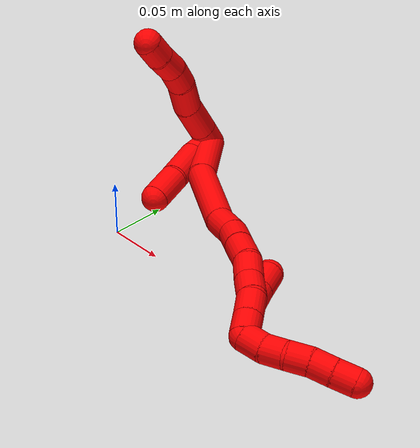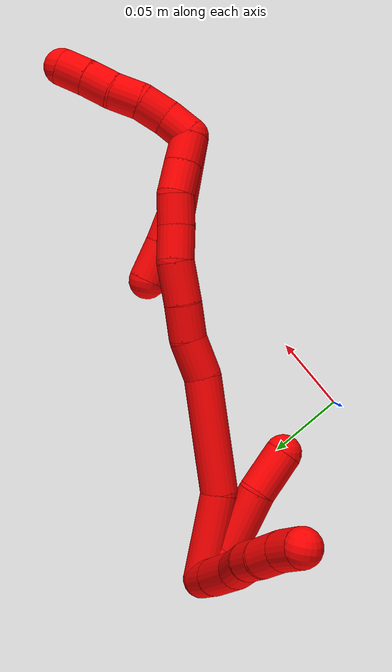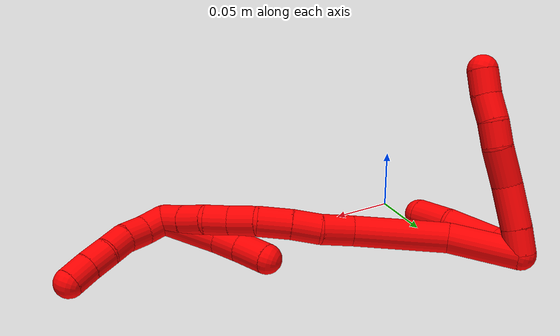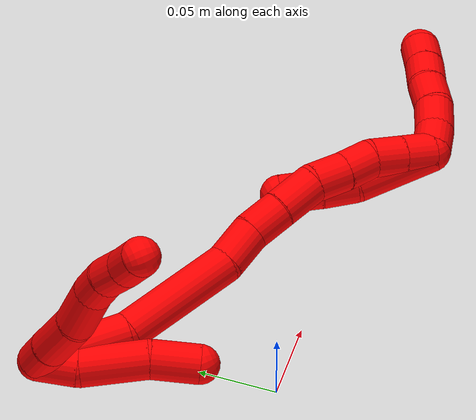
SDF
<sdf version="1.7">
 <world name="default">
  <model name="2">
   <static>0</static>
   <link name="2">
    <collision name="collision-cylinder-e_1_2_8">
     <pose>-0.009106 0.002443 0.004652 -0.483489 -1.0474 0.282876</pose>
     <geometry><cylinder><radius>0.0125</radius><length>0.021027</length></cylinder></geometry>
     <surface>
      <friction><ode><mu>1.16</mu><mu2>1.16</mu2><slip1>0</slip1><slip2>0</slip2></ode></friction>
      <contact><ode><kp>1e+06</kp><kd>1</kd><max_vel>0</max_vel><min_depth>0.001</min_depth></ode></contact>
     </surface>
    </collision>
    <visual name="visual-cylinder-e_1_2_8">
     <pose>-0.009106 0.002443 0.004652 -0.483489 -1.0474 0.282876</pose>
     <geometry><cylinder><radius>0.0125</radius><length>0.021027</length></cylinder></geometry>
     <material><ambient>1 0 0 1</ambient></material>
    </visual>
    <collision name="collision-cylinder-e_2_8_9">
     <pose>-0.033086 0.008951 0.018162 -0.430361 -0.990785 0.235107</pose>
     <geometry><cylinder><radius>0.0125</radius><length>0.035564</length></cylinder></geometry>
     <surface>
      <friction><ode><mu>1.16</mu><mu2>1.16</mu2><slip1>0</slip1><slip2>0</slip2></ode></friction>
      <contact><ode><kp>1e+06</kp><kd>1</kd><max_vel>0</max_vel><min_depth>0.001</min_depth></ode></contact>
     </surface>
    </collision>
    <visual name="visual-cylinder-e_2_8_9">
     <pose>-0.033086 0.008951 0.018162 -0.430361 -0.990785 0.235107</pose>
     <geometry><cylinder><radius>0.0125</radius><length>0.035564</length></cylinder></geometry>
     <material><ambient>1 0 0 1</ambient></material>
    </visual>
    <collision name="collision-cylinder-e_3_9_10">
     <pose>-0.059921 0.019753 0.034896 -0.707381 -0.856782 0.334082</pose>
     <geometry><cylinder><radius>0.0125</radius><length>0.031655</length></cylinder></geometry>
     <surface>
      <friction><ode><mu>1.16</mu><mu2>1.16</mu2><slip1>0</slip1><slip2>0</slip2></ode></friction>
      <contact><ode><kp>1e+06</kp><kd>1</kd><max_vel>0</max_vel><min_depth>0.001</min_depth></ode></contact>
     </surface>
    </collision>
    <visual name="visual-cylinder-e_3_9_10">
     <pose>-0.059921 0.019753 0.034896 -0.707381 -0.856782 0.334082</pose>
     <geometry><cylinder><radius>0.0125</radius><length>0.031655</length></cylinder></geometry>
     <material><ambient>1 0 0 1</ambient></material>
    </visual>
    <collision name="collision-cylinder-e_4_10_11">
     <pose>-0.080551 0.028995 0.047459 -0.491326 -1.02092 0.278972</pose>
     <geometry><cylinder><radius>0.0125</radius><length>0.020334</length></cylinder></geometry>
     <surface>
      <friction><ode><mu>1.16</mu><mu2>1.16</mu2><slip1>0</slip1><slip2>0</slip2></ode></friction>
      <contact><ode><kp>1e+06</kp><kd>1</kd><max_vel>0</max_vel><min_depth>0.001</min_depth></ode></contact>
     </surface>
    </collision>
    <visual name="visual-cylinder-e_4_10_11">
     <pose>-0.080551 0.028995 0.047459 -0.491326 -1.02092 0.278972</pose>
     <geometry><cylinder><radius>0.0125</radius><length>0.020334</length></cylinder></geometry>
     <material><ambient>1 0 0 1</ambient></material>
    </visual>
    <collision name="collision-cylinder-e_5_11_12">
     <pose>-0.098004 0.032165 0.057852 -0.115777 -0.991514 0.062662</pose>
     <geometry><cylinder><radius>0.0125</radius><length>0.020995</length></cylinder></geometry>
     <surface>
      <friction><ode><mu>1.16</mu><mu2>1.16</mu2><slip1>0</slip1><slip2>0</slip2></ode></friction>
      <contact><ode><kp>1e+06</kp><kd>1</kd><max_vel>0</max_vel><min_depth>0.001</min_depth></ode></contact>
     </surface>
    </collision>
    <visual name="visual-cylinder-e_5_11_12">
     <pose>-0.098004 0.032165 0.057852 -0.115777 -0.991514 0.062662</pose>
     <geometry><cylinder><radius>0.0125</radius><length>0.020995</length></cylinder></geometry>
     <material><ambient>1 0 0 1</ambient></material>
    </visual>
    <collision name="collision-cylinder-e_6_12_6">
     <pose>-0.11589 0.034 0.068044 -0.255384 -1.09978 0.157071</pose>
     <geometry><cylinder><radius>0.0125</radius><length>0.020425</length></cylinder></geometry>
     <surface>
      <friction><ode><mu>1.16</mu><mu2>1.16</mu2><slip1>0</slip1><slip2>0</slip2></ode></friction>
      <contact><ode><kp>1e+06</kp><kd>1</kd><max_vel>0</max_vel><min_depth>0.001</min_depth></ode></contact>
     </surface>
    </collision>
    <visual name="visual-cylinder-e_6_12_6">
     <pose>-0.11589 0.034 0.068044 -0.255384 -1.09978 0.157071</pose>
     <geometry><cylinder><radius>0.0125</radius><length>0.020425</length></cylinder></geometry>
     <material><ambient>1 0 0 1</ambient></material>
    </visual>
    <collision name="collision-cylinder-e_1_2_13">
     <pose>-0.002139 -0.006752 0.010738 0.561316 -0.167056 -0.04826</pose>
     <geometry><cylinder><radius>0.0125</radius><length>0.025727</length></cylinder></geometry>
     <surface>
      <friction><ode><mu>1.16</mu><mu2>1.16</mu2><slip1>0</slip1><slip2>0</slip2></ode></friction>
      <contact><ode><kp>1e+06</kp><kd>1</kd><max_vel>0</max_vel><min_depth>0.001</min_depth></ode></contact>
     </surface>
    </collision>
    <visual name="visual-cylinder-e_1_2_13">
     <pose>-0.002139 -0.006752 0.010738 0.561316 -0.167056 -0.04826</pose>
     <geometry><cylinder><radius>0.0125</radius><length>0.025727</length></cylinder></geometry>
     <material><ambient>1 0 0 1</ambient></material>
    </visual>
    <collision name="collision-cylinder-e_2_13_14">
     <pose>-0.006167 -0.019574 0.042199 0.284963 -0.087262 -0.012526</pose>
     <geometry><cylinder><radius>0.0125</radius><length>0.043353</length></cylinder></geometry>
     <surface>
      <friction><ode><mu>1.16</mu><mu2>1.16</mu2><slip1>0</slip1><slip2>0</slip2></ode></friction>
      <contact><ode><kp>1e+06</kp><kd>1</kd><max_vel>0</max_vel><min_depth>0.001</min_depth></ode></contact>
     </surface>
    </collision>
    <visual name="visual-cylinder-e_2_13_14">
     <pose>-0.006167 -0.019574 0.042199 0.284963 -0.087262 -0.012526</pose>
     <geometry><cylinder><radius>0.0125</radius><length>0.043353</length></cylinder></geometry>
     <material><ambient>1 0 0 1</ambient></material>
    </visual>
    <collision name="collision-cylinder-e_3_14_5">
     <pose>-0.008689 -0.033112 0.076444 0.504564 -0.040951 -0.010557</pose>
     <geometry><cylinder><radius>0.0125</radius><length>0.030921</length></cylinder></geometry>
     <surface>
      <friction><ode><mu>1.16</mu><mu2>1.16</mu2><slip1>0</slip1><slip2>0</slip2></ode></friction>
      <contact><ode><kp>1e+06</kp><kd>1</kd><max_vel>0</max_vel><min_depth>0.001</min_depth></ode></contact>
     </surface>
    </collision>
    <visual name="visual-cylinder-e_3_14_5">
     <pose>-0.008689 -0.033112 0.076444 0.504564 -0.040951 -0.010557</pose>
     <geometry><cylinder><radius>0.0125</radius><length>0.030921</length></cylinder></geometry>
     <material><ambient>1 0 0 1</ambient></material>
    </visual>
    <collision name="collision-cylinder-e_1_2_15">
     <pose>0.002715 -0.002631 0.028956 0.090615 0.093125 0.004225</pose>
     <geometry><cylinder><radius>0.0125</radius><length>0.058403</length></cylinder></geometry>
     <surface>
      <friction><ode><mu>1.16</mu><mu2>1.16</mu2><slip1>0</slip1><slip2>0</slip2></ode></friction>
      <contact><ode><kp>1e+06</kp><kd>1</kd><max_vel>0</max_vel><min_depth>0.001</min_depth></ode></contact>
     </surface>
    </collision>
    <visual name="visual-cylinder-e_1_2_15">
     <pose>0.002715 -0.002631 0.028956 0.090615 0.093125 0.004225</pose>
     <geometry><cylinder><radius>0.0125</radius><length>0.058403</length></cylinder></geometry>
     <material><ambient>1 0 0 1</ambient></material>
    </visual>
    <collision name="collision-cylinder-e_2_15_16">
     <pose>0.016139 0.002139 0.094695 -0.198566 0.277993 -0.027869</pose>
     <geometry><cylinder><radius>0.0125</radius><length>0.078037</length></cylinder></geometry>
     <surface>
      <friction><ode><mu>1.16</mu><mu2>1.16</mu2><slip1>0</slip1><slip2>0</slip2></ode></friction>
      <contact><ode><kp>1e+06</kp><kd>1</kd><max_vel>0</max_vel><min_depth>0.001</min_depth></ode></contact>
     </surface>
    </collision>
    <visual name="visual-cylinder-e_2_15_16">
     <pose>0.016139 0.002139 0.094695 -0.198566 0.277993 -0.027869</pose>
     <geometry><cylinder><radius>0.0125</radius><length>0.078037</length></cylinder></geometry>
     <material><ambient>1 0 0 1</ambient></material>
    </visual>
    <collision name="collision-cylinder-e_3_16_17">
     <pose>0.030859 0.015163 0.142882 -0.458047 0.305691 -0.07179</pose>
     <geometry><cylinder><radius>0.0125</radius><length>0.026664</length></cylinder></geometry>
     <surface>
      <friction><ode><mu>1.16</mu><mu2>1.16</mu2><slip1>0</slip1><slip2>0</slip2></ode></friction>
      <contact><ode><kp>1e+06</kp><kd>1</kd><max_vel>0</max_vel><min_depth>0.001</min_depth></ode></contact>
     </surface>
    </collision>
    <visual name="visual-cylinder-e_3_16_17">
     <pose>0.030859 0.015163 0.142882 -0.458047 0.305691 -0.07179</pose>
     <geometry><cylinder><radius>0.0125</radius><length>0.026664</length></cylinder></geometry>
     <material><ambient>1 0 0 1</ambient></material>
    </visual>
    <collision name="collision-cylinder-e_4_17_18">
     <pose>0.037061 0.023771 0.165597 -0.258114 0.18506 -0.024084</pose>
     <geometry><cylinder><radius>0.0125</radius><length>0.023806</length></cylinder></geometry>
     <surface>
      <friction><ode><mu>1.16</mu><mu2>1.16</mu2><slip1>0</slip1><slip2>0</slip2></ode></friction>
      <contact><ode><kp>1e+06</kp><kd>1</kd><max_vel>0</max_vel><min_depth>0.001</min_depth></ode></contact>
     </surface>
    </collision>
    <visual name="visual-cylinder-e_4_17_18">
     <pose>0.037061 0.023771 0.165597 -0.258114 0.18506 -0.024084</pose>
     <geometry><cylinder><radius>0.0125</radius><length>0.023806</length></cylinder></geometry>
     <material><ambient>1 0 0 1</ambient></material>
    </visual>
    <collision name="collision-cylinder-e_5_18_19">
     <pose>0.042866 0.03018 0.189999 -0.255704 0.261077 -0.033751</pose>
     <geometry><cylinder><radius>0.0125</radius><length>0.028009</length></cylinder></geometry>
     <surface>
      <friction><ode><mu>1.16</mu><mu2>1.16</mu2><slip1>0</slip1><slip2>0</slip2></ode></friction>
      <contact><ode><kp>1e+06</kp><kd>1</kd><max_vel>0</max_vel><min_depth>0.001</min_depth></ode></contact>
     </surface>
    </collision>
    <visual name="visual-cylinder-e_5_18_19">
     <pose>0.042866 0.03018 0.189999 -0.255704 0.261077 -0.033751</pose>
     <geometry><cylinder><radius>0.0125</radius><length>0.028009</length></cylinder></geometry>
     <material><ambient>1 0 0 1</ambient></material>
    </visual>
    <collision name="collision-cylinder-e_6_19_20">
     <pose>0.049982 0.033135 0.213936 0.043006 0.311962 0.006764</pose>
     <geometry><cylinder><radius>0.0125</radius><length>0.022815</length></cylinder></geometry>
     <surface>
      <friction><ode><mu>1.16</mu><mu2>1.16</mu2><slip1>0</slip1><slip2>0</slip2></ode></friction>
      <contact><ode><kp>1e+06</kp><kd>1</kd><max_vel>0</max_vel><min_depth>0.001</min_depth></ode></contact>
     </surface>
    </collision>
    <visual name="visual-cylinder-e_6_19_20">
     <pose>0.049982 0.033135 0.213936 0.043006 0.311962 0.006764</pose>
     <geometry><cylinder><radius>0.0125</radius><length>0.022815</length></cylinder></geometry>
     <material><ambient>1 0 0 1</ambient></material>
    </visual>
    <collision name="collision-cylinder-e_7_20_21">
     <pose>0.056472 0.033032 0.234582 -0.037058 0.295844 -0.005523</pose>
     <geometry><cylinder><radius>0.0125</radius><length>0.020502</length></cylinder></geometry>
     <surface>
      <friction><ode><mu>1.16</mu><mu2>1.16</mu2><slip1>0</slip1><slip2>0</slip2></ode></friction>
      <contact><ode><kp>1e+06</kp><kd>1</kd><max_vel>0</max_vel><min_depth>0.001</min_depth></ode></contact>
     </surface>
    </collision>
    <visual name="visual-cylinder-e_7_20_21">
     <pose>0.056472 0.033032 0.234582 -0.037058 0.295844 -0.005523</pose>
     <geometry><cylinder><radius>0.0125</radius><length>0.020502</length></cylinder></geometry>
     <material><ambient>1 0 0 1</ambient></material>
    </visual>
    <collision name="collision-cylinder-e_8_21_22">
     <pose>0.062621 0.03049 0.254251 0.286266 0.297988 0.04326</pose>
     <geometry><cylinder><radius>0.0125</radius><length>0.021528</length></cylinder></geometry>
     <surface>
      <friction><ode><mu>1.16</mu><mu2>1.16</mu2><slip1>0</slip1><slip2>0</slip2></ode></friction>
      <contact><ode><kp>1e+06</kp><kd>1</kd><max_vel>0</max_vel><min_depth>0.001</min_depth></ode></contact>
     </surface>
    </collision>
    <visual name="visual-cylinder-e_8_21_22">
     <pose>0.062621 0.03049 0.254251 0.286266 0.297988 0.04326</pose>
     <geometry><cylinder><radius>0.0125</radius><length>0.021528</length></cylinder></geometry>
     <material><ambient>1 0 0 1</ambient></material>
    </visual>
    <collision name="collision-cylinder-e_9_22_1">
     <pose>0.068361 0.024867 0.273521 0.281355 0.257742 0.036699</pose>
     <geometry><cylinder><radius>0.0125</radius><length>0.020236</length></cylinder></geometry>
     <surface>
      <friction><ode><mu>1.16</mu><mu2>1.16</mu2><slip1>0</slip1><slip2>0</slip2></ode></friction>
      <contact><ode><kp>1e+06</kp><kd>1</kd><max_vel>0</max_vel><min_depth>0.001</min_depth></ode></contact>
     </surface>
    </collision>
    <visual name="visual-cylinder-e_9_22_1">
     <pose>0.068361 0.024867 0.273521 0.281355 0.257742 0.036699</pose>
     <geometry><cylinder><radius>0.0125</radius><length>0.020236</length></cylinder></geometry>
     <material><ambient>1 0 0 1</ambient></material>
    </visual>
    <collision name="collision-cylinder-e_1_1_23">
     <pose>0.078058 0.027557 0.287404 -0.878392 0.792089 -0.387942</pose>
     <geometry><cylinder><radius>0.0125</radius><length>0.02</length></cylinder></geometry>
     <surface>
      <friction><ode><mu>1.16</mu><mu2>1.16</mu2><slip1>0</slip1><slip2>0</slip2></ode></friction>
      <contact><ode><kp>1e+06</kp><kd>1</kd><max_vel>0</max_vel><min_depth>0.001</min_depth></ode></contact>
     </surface>
    </collision>
    <visual name="visual-cylinder-e_1_1_23">
     <pose>0.078058 0.027557 0.287404 -0.878392 0.792089 -0.387942</pose>
     <geometry><cylinder><radius>0.0125</radius><length>0.02</length></cylinder></geometry>
     <material><ambient>1 0 0 1</ambient></material>
    </visual>
    <collision name="collision-cylinder-e_2_23_24">
     <pose>0.090913 0.04024 0.295647 -1.09398 0.611049 -0.379519</pose>
     <geometry><cylinder><radius>0.0125</radius><length>0.02</length></cylinder></geometry>
     <surface>
      <friction><ode><mu>1.16</mu><mu2>1.16</mu2><slip1>0</slip1><slip2>0</slip2></ode></friction>
      <contact><ode><kp>1e+06</kp><kd>1</kd><max_vel>0</max_vel><min_depth>0.001</min_depth></ode></contact>
     </surface>
    </collision>
    <visual name="visual-cylinder-e_2_23_24">
     <pose>0.090913 0.04024 0.295647 -1.09398 0.611049 -0.379519</pose>
     <geometry><cylinder><radius>0.0125</radius><length>0.02</length></cylinder></geometry>
     <material><ambient>1 0 0 1</ambient></material>
    </visual>
    <collision name="collision-cylinder-e_3_24_25">
     <pose>0.103609 0.0545 0.301083 -1.33517 0.769636 -0.618102</pose>
     <geometry><cylinder><radius>0.0125</radius><length>0.02</length></cylinder></geometry>
     <surface>
      <friction><ode><mu>1.16</mu><mu2>1.16</mu2><slip1>0</slip1><slip2>0</slip2></ode></friction>
      <contact><ode><kp>1e+06</kp><kd>1</kd><max_vel>0</max_vel><min_depth>0.001</min_depth></ode></contact>
     </surface>
    </collision>
    <visual name="visual-cylinder-e_3_24_25">
     <pose>0.103609 0.0545 0.301083 -1.33517 0.769636 -0.618102</pose>
     <geometry><cylinder><radius>0.0125</radius><length>0.02</length></cylinder></geometry>
     <material><ambient>1 0 0 1</ambient></material>
    </visual>
    <collision name="collision-cylinder-e_4_25_26">
     <pose>0.118218 0.067339 0.305441 -1.14127 0.870973 -0.58043</pose>
     <geometry><cylinder><radius>0.0125</radius><length>0.02</length></cylinder></geometry>
     <surface>
      <friction><ode><mu>1.16</mu><mu2>1.16</mu2><slip1>0</slip1><slip2>0</slip2></ode></friction>
      <contact><ode><kp>1e+06</kp><kd>1</kd><max_vel>0</max_vel><min_depth>0.001</min_depth></ode></contact>
     </surface>
    </collision>
    <visual name="visual-cylinder-e_4_25_26">
     <pose>0.118218 0.067339 0.305441 -1.14127 0.870973 -0.58043</pose>
     <geometry><cylinder><radius>0.0125</radius><length>0.02</length></cylinder></geometry>
     <material><ambient>1 0 0 1</ambient></material>
    </visual>
    <collision name="collision-cylinder-e_5_26_4">
     <pose>0.133642 0.079118 0.310237 -1.22805 0.890634 -0.649114</pose>
     <geometry><cylinder><radius>0.0125</radius><length>0.02</length></cylinder></geometry>
     <surface>
      <friction><ode><mu>1.16</mu><mu2>1.16</mu2><slip1>0</slip1><slip2>0</slip2></ode></friction>
      <contact><ode><kp>1e+06</kp><kd>1</kd><max_vel>0</max_vel><min_depth>0.001</min_depth></ode></contact>
     </surface>
    </collision>
    <visual name="visual-cylinder-e_5_26_4">
     <pose>0.133642 0.079118 0.310237 -1.22805 0.890634 -0.649114</pose>
     <geometry><cylinder><radius>0.0125</radius><length>0.02</length></cylinder></geometry>
     <material><ambient>1 0 0 1</ambient></material>
    </visual>
    <collision name="collision-cylinder-e_1_1_27">
     <pose>0.070493 0.022427 0.257211 -3.13085 -0.017375 2.03391</pose>
     <geometry><cylinder><radius>0.0125</radius><length>0.05143</length></cylinder></geometry>
     <surface>
      <friction><ode><mu>1.16</mu><mu2>1.16</mu2><slip1>0</slip1><slip2>0</slip2></ode></friction>
      <contact><ode><kp>1e+06</kp><kd>1</kd><max_vel>0</max_vel><min_depth>0.001</min_depth></ode></contact>
     </surface>
    </collision>
    <visual name="visual-cylinder-e_1_1_27">
     <pose>0.070493 0.022427 0.257211 -3.13085 -0.017375 2.03391</pose>
     <geometry><cylinder><radius>0.0125</radius><length>0.05143</length></cylinder></geometry>
     <material><ambient>1 0 0 1</ambient></material>
    </visual>
    <collision name="collision-cylinder-e_2_27_28">
     <pose>0.070371 0.025192 0.220702 -2.91506 0.029332 -0.256458</pose>
     <geometry><cylinder><radius>0.0125</radius><length>0.022172</length></cylinder></geometry>
     <surface>
      <friction><ode><mu>1.16</mu><mu2>1.16</mu2><slip1>0</slip1><slip2>0</slip2></ode></friction>
      <contact><ode><kp>1e+06</kp><kd>1</kd><max_vel>0</max_vel><min_depth>0.001</min_depth></ode></contact>
     </surface>
    </collision>
    <visual name="visual-cylinder-e_2_27_28">
     <pose>0.070371 0.025192 0.220702 -2.91506 0.029332 -0.256458</pose>
     <geometry><cylinder><radius>0.0125</radius><length>0.022172</length></cylinder></geometry>
     <material><ambient>1 0 0 1</ambient></material>
    </visual>
    <collision name="collision-cylinder-e_3_28_3">
     <pose>0.071408 0.031253 0.197218 -2.86715 0.053939 -0.385852</pose>
     <geometry><cylinder><radius>0.0125</radius><length>0.026397</length></cylinder></geometry>
     <surface>
      <friction><ode><mu>1.16</mu><mu2>1.16</mu2><slip1>0</slip1><slip2>0</slip2></ode></friction>
      <contact><ode><kp>1e+06</kp><kd>1</kd><max_vel>0</max_vel><min_depth>0.001</min_depth></ode></contact>
     </surface>
    </collision>
    <visual name="visual-cylinder-e_3_28_3">
     <pose>0.071408 0.031253 0.197218 -2.86715 0.053939 -0.385852</pose>
     <geometry><cylinder><radius>0.0125</radius><length>0.026397</length></cylinder></geometry>
     <material><ambient>1 0 0 1</ambient></material>
    </visual>
    <collision name="collision-sphere-3">
     <pose>0.072119 0.034825 0.184532 0 -0 0</pose>
     <geometry><sphere><radius>0.0125</radius></sphere></geometry>
     <surface>
      <friction><ode><mu>1.16</mu><mu2>1.16</mu2><slip1>0</slip1><slip2>0</slip2></ode></friction>
      <contact><ode><kp>1e+06</kp><kd>1</kd><max_vel>0</max_vel><min_depth>0.001</min_depth></ode></contact>
     </surface>
    </collision>
    <visual name="visual-sphere-3">
     <pose>0.072119 0.034825 0.184532 0 -0 0</pose>
     <geometry><sphere><radius>0.0125</radius></sphere></geometry>
     <material><ambient>1 0 0 1</ambient></material>
    </visual>
    <collision name="collision-sphere-28">
     <pose>0.070696 0.027681 0.209904 0 -0 0</pose>
     <geometry><sphere><radius>0.0125</radius></sphere></geometry>
     <surface>
      <friction><ode><mu>1.16</mu><mu2>1.16</mu2><slip1>0</slip1><slip2>0</slip2></ode></friction>
      <contact><ode><kp>1e+06</kp><kd>1</kd><max_vel>0</max_vel><min_depth>0.001</min_depth></ode></contact>
     </surface>
    </collision>
    <visual name="visual-sphere-28">
     <pose>0.070696 0.027681 0.209904 0 -0 0</pose>
     <geometry><sphere><radius>0.0125</radius></sphere></geometry>
     <material><ambient>1 0 0 1</ambient></material>
    </visual>
    <collision name="collision-sphere-27">
     <pose>0.070046 0.022703 0.231501 0 -0 0</pose>
     <geometry><sphere><radius>0.0125</radius></sphere></geometry>
     <surface>
      <friction><ode><mu>1.16</mu><mu2>1.16</mu2><slip1>0</slip1><slip2>0</slip2></ode></friction>
      <contact><ode><kp>1e+06</kp><kd>1</kd><max_vel>0</max_vel><min_depth>0.001</min_depth></ode></contact>
     </surface>
    </collision>
    <visual name="visual-sphere-27">
     <pose>0.070046 0.022703 0.231501 0 -0 0</pose>
     <geometry><sphere><radius>0.0125</radius></sphere></geometry>
     <material><ambient>1 0 0 1</ambient></material>
    </visual>
    <collision name="collision-sphere-4">
     <pose>0.141417 0.085042 0.312351 0 -0 0</pose>
     <geometry><sphere><radius>0.0125</radius></sphere></geometry>
     <surface>
      <friction><ode><mu>1.16</mu><mu2>1.16</mu2><slip1>0</slip1><slip2>0</slip2></ode></friction>
      <contact><ode><kp>1e+06</kp><kd>1</kd><max_vel>0</max_vel><min_depth>0.001</min_depth></ode></contact>
     </surface>
    </collision>
    <visual name="visual-sphere-4">
     <pose>0.141417 0.085042 0.312351 0 -0 0</pose>
     <geometry><sphere><radius>0.0125</radius></sphere></geometry>
     <material><ambient>1 0 0 1</ambient></material>
    </visual>
    <collision name="collision-sphere-26">
     <pose>0.125867 0.073195 0.308124 0 -0 0</pose>
     <geometry><sphere><radius>0.0125</radius></sphere></geometry>
     <surface>
      <friction><ode><mu>1.16</mu><mu2>1.16</mu2><slip1>0</slip1><slip2>0</slip2></ode></friction>
      <contact><ode><kp>1e+06</kp><kd>1</kd><max_vel>0</max_vel><min_depth>0.001</min_depth></ode></contact>
     </surface>
    </collision>
    <visual name="visual-sphere-26">
     <pose>0.125867 0.073195 0.308124 0 -0 0</pose>
     <geometry><sphere><radius>0.0125</radius></sphere></geometry>
     <material><ambient>1 0 0 1</ambient></material>
    </visual>
    <collision name="collision-sphere-25">
     <pose>0.110568 0.061484 0.302759 0 -0 0</pose>
     <geometry><sphere><radius>0.0125</radius></sphere></geometry>
     <surface>
      <friction><ode><mu>1.16</mu><mu2>1.16</mu2><slip1>0</slip1><slip2>0</slip2></ode></friction>
      <contact><ode><kp>1e+06</kp><kd>1</kd><max_vel>0</max_vel><min_depth>0.001</min_depth></ode></contact>
     </surface>
    </collision>
    <visual name="visual-sphere-25">
     <pose>0.110568 0.061484 0.302759 0 -0 0</pose>
     <geometry><sphere><radius>0.0125</radius></sphere></geometry>
     <material><ambient>1 0 0 1</ambient></material>
    </visual>
    <collision name="collision-sphere-24">
     <pose>0.096651 0.047517 0.299406 0 -0 0</pose>
     <geometry><sphere><radius>0.0125</radius></sphere></geometry>
     <surface>
      <friction><ode><mu>1.16</mu><mu2>1.16</mu2><slip1>0</slip1><slip2>0</slip2></ode></friction>
      <contact><ode><kp>1e+06</kp><kd>1</kd><max_vel>0</max_vel><min_depth>0.001</min_depth></ode></contact>
     </surface>
    </collision>
    <visual name="visual-sphere-24">
     <pose>0.096651 0.047517 0.299406 0 -0 0</pose>
     <geometry><sphere><radius>0.0125</radius></sphere></geometry>
     <material><ambient>1 0 0 1</ambient></material>
    </visual>
    <collision name="collision-sphere-23">
     <pose>0.085176 0.032963 0.291888 0 -0 0</pose>
     <geometry><sphere><radius>0.0125</radius></sphere></geometry>
     <surface>
      <friction><ode><mu>1.16</mu><mu2>1.16</mu2><slip1>0</slip1><slip2>0</slip2></ode></friction>
      <contact><ode><kp>1e+06</kp><kd>1</kd><max_vel>0</max_vel><min_depth>0.001</min_depth></ode></contact>
     </surface>
    </collision>
    <visual name="visual-sphere-23">
     <pose>0.085176 0.032963 0.291888 0 -0 0</pose>
     <geometry><sphere><radius>0.0125</radius></sphere></geometry>
     <material><ambient>1 0 0 1</ambient></material>
    </visual>
    <collision name="collision-sphere-1">
     <pose>0.07094 0.022151 0.28292 0 -0 0</pose>
     <geometry><sphere><radius>0.0125</radius></sphere></geometry>
     <surface>
      <friction><ode><mu>1.16</mu><mu2>1.16</mu2><slip1>0</slip1><slip2>0</slip2></ode></friction>
      <contact><ode><kp>1e+06</kp><kd>1</kd><max_vel>0</max_vel><min_depth>0.001</min_depth></ode></contact>
     </surface>
    </collision>
    <visual name="visual-sphere-1">
     <pose>0.07094 0.022151 0.28292 0 -0 0</pose>
     <geometry><sphere><radius>0.0125</radius></sphere></geometry>
     <material><ambient>1 0 0 1</ambient></material>
    </visual>
    <collision name="collision-sphere-22">
     <pose>0.065782 0.027584 0.264122 0 -0 0</pose>
     <geometry><sphere><radius>0.0125</radius></sphere></geometry>
     <surface>
      <friction><ode><mu>1.16</mu><mu2>1.16</mu2><slip1>0</slip1><slip2>0</slip2></ode></friction>
      <contact><ode><kp>1e+06</kp><kd>1</kd><max_vel>0</max_vel><min_depth>0.001</min_depth></ode></contact>
     </surface>
    </collision>
    <visual name="visual-sphere-22">
     <pose>0.065782 0.027584 0.264122 0 -0 0</pose>
     <geometry><sphere><radius>0.0125</radius></sphere></geometry>
     <material><ambient>1 0 0 1</ambient></material>
    </visual>
    <collision name="collision-sphere-21">
     <pose>0.059461 0.033395 0.24438 0 -0 0</pose>
     <geometry><sphere><radius>0.0125</radius></sphere></geometry>
     <surface>
      <friction><ode><mu>1.16</mu><mu2>1.16</mu2><slip1>0</slip1><slip2>0</slip2></ode></friction>
      <contact><ode><kp>1e+06</kp><kd>1</kd><max_vel>0</max_vel><min_depth>0.001</min_depth></ode></contact>
     </surface>
    </collision>
    <visual name="visual-sphere-21">
     <pose>0.059461 0.033395 0.24438 0 -0 0</pose>
     <geometry><sphere><radius>0.0125</radius></sphere></geometry>
     <material><ambient>1 0 0 1</ambient></material>
    </visual>
    <collision name="collision-sphere-12">
     <pose>-0.106789 0.032829 0.06356 0 -0 0</pose>
     <geometry><sphere><radius>0.0125</radius></sphere></geometry>
     <surface>
      <friction><ode><mu>1.16</mu><mu2>1.16</mu2><slip1>0</slip1><slip2>0</slip2></ode></friction>
      <contact><ode><kp>1e+06</kp><kd>1</kd><max_vel>0</max_vel><min_depth>0.001</min_depth></ode></contact>
     </surface>
    </collision>
    <visual name="visual-sphere-12">
     <pose>-0.106789 0.032829 0.06356 0 -0 0</pose>
     <geometry><sphere><radius>0.0125</radius></sphere></geometry>
     <material><ambient>1 0 0 1</ambient></material>
    </visual>
    <collision name="collision-sphere-11">
     <pose>-0.089219 0.031502 0.052143 0 -0 0</pose>
     <geometry><sphere><radius>0.0125</radius></sphere></geometry>
     <surface>
      <friction><ode><mu>1.16</mu><mu2>1.16</mu2><slip1>0</slip1><slip2>0</slip2></ode></friction>
      <contact><ode><kp>1e+06</kp><kd>1</kd><max_vel>0</max_vel><min_depth>0.001</min_depth></ode></contact>
     </surface>
    </collision>
    <visual name="visual-sphere-11">
     <pose>-0.089219 0.031502 0.052143 0 -0 0</pose>
     <geometry><sphere><radius>0.0125</radius></sphere></geometry>
     <material><ambient>1 0 0 1</ambient></material>
    </visual>
    <collision name="collision-sphere-10">
     <pose>-0.071883 0.026488 0.042774 0 -0 0</pose>
     <geometry><sphere><radius>0.0125</radius></sphere></geometry>
     <surface>
      <friction><ode><mu>1.16</mu><mu2>1.16</mu2><slip1>0</slip1><slip2>0</slip2></ode></friction>
      <contact><ode><kp>1e+06</kp><kd>1</kd><max_vel>0</max_vel><min_depth>0.001</min_depth></ode></contact>
     </surface>
    </collision>
    <visual name="visual-sphere-10">
     <pose>-0.071883 0.026488 0.042774 0 -0 0</pose>
     <geometry><sphere><radius>0.0125</radius></sphere></geometry>
     <material><ambient>1 0 0 1</ambient></material>
    </visual>
    <collision name="collision-sphere-9">
     <pose>-0.04796 0.013017 0.027018 0 -0 0</pose>
     <geometry><sphere><radius>0.0125</radius></sphere></geometry>
     <surface>
      <friction><ode><mu>1.16</mu><mu2>1.16</mu2><slip1>0</slip1><slip2>0</slip2></ode></friction>
      <contact><ode><kp>1e+06</kp><kd>1</kd><max_vel>0</max_vel><min_depth>0.001</min_depth></ode></contact>
     </surface>
    </collision>
    <visual name="visual-sphere-9">
     <pose>-0.04796 0.013017 0.027018 0 -0 0</pose>
     <geometry><sphere><radius>0.0125</radius></sphere></geometry>
     <material><ambient>1 0 0 1</ambient></material>
    </visual>
    <collision name="collision-sphere-2">
     <geometry><sphere><radius>0.0125</radius></sphere></geometry>
     <surface>
      <friction><ode><mu>1.16</mu><mu2>1.16</mu2><slip1>0</slip1><slip2>0</slip2></ode></friction>
      <contact><ode><kp>1e+06</kp><kd>1</kd><max_vel>0</max_vel><min_depth>0.001</min_depth></ode></contact>
     </surface>
    </collision>
    <visual name="visual-sphere-2">
     <geometry><sphere><radius>0.0125</radius></sphere></geometry>
     <material><ambient>1 0 0 1</ambient></material>
    </visual>
    <collision name="collision-sphere-19">
     <pose>0.046481 0.033602 0.203089 0 -0 0</pose>
     <geometry><sphere><radius>0.0125</radius></sphere></geometry>
     <surface>
      <friction><ode><mu>1.16</mu><mu2>1.16</mu2><slip1>0</slip1><slip2>0</slip2></ode></friction>
      <contact><ode><kp>1e+06</kp><kd>1</kd><max_vel>0</max_vel><min_depth>0.001</min_depth></ode></contact>
     </surface>
    </collision>
    <visual name="visual-sphere-19">
     <pose>0.046481 0.033602 0.203089 0 -0 0</pose>
     <geometry><sphere><radius>0.0125</radius></sphere></geometry>
     <material><ambient>1 0 0 1</ambient></material>
    </visual>
    <collision name="collision-sphere-8">
     <pose>-0.018212 0.004886 0.009305 0 -0 0</pose>
     <geometry><sphere><radius>0.0125</radius></sphere></geometry>
     <surface>
      <friction><ode><mu>1.16</mu><mu2>1.16</mu2><slip1>0</slip1><slip2>0</slip2></ode></friction>
      <contact><ode><kp>1e+06</kp><kd>1</kd><max_vel>0</max_vel><min_depth>0.001</min_depth></ode></contact>
     </surface>
    </collision>
    <visual name="visual-sphere-8">
     <pose>-0.018212 0.004886 0.009305 0 -0 0</pose>
     <geometry><sphere><radius>0.0125</radius></sphere></geometry>
     <material><ambient>1 0 0 1</ambient></material>
    </visual>
    <collision name="collision-sphere-6">
     <pose>-0.12499 0.035171 0.072528 0 -0 0</pose>
     <geometry><sphere><radius>0.0125</radius></sphere></geometry>
     <surface>
      <friction><ode><mu>1.16</mu><mu2>1.16</mu2><slip1>0</slip1><slip2>0</slip2></ode></friction>
      <contact><ode><kp>1e+06</kp><kd>1</kd><max_vel>0</max_vel><min_depth>0.001</min_depth></ode></contact>
     </surface>
    </collision>
    <visual name="visual-sphere-6">
     <pose>-0.12499 0.035171 0.072528 0 -0 0</pose>
     <geometry><sphere><radius>0.0125</radius></sphere></geometry>
     <material><ambient>1 0 0 1</ambient></material>
    </visual>
    <collision name="collision-sphere-13">
     <pose>-0.004278 -0.013504 0.021476 0 -0 0</pose>
     <geometry><sphere><radius>0.0125</radius></sphere></geometry>
     <surface>
      <friction><ode><mu>1.16</mu><mu2>1.16</mu2><slip1>0</slip1><slip2>0</slip2></ode></friction>
      <contact><ode><kp>1e+06</kp><kd>1</kd><max_vel>0</max_vel><min_depth>0.001</min_depth></ode></contact>
     </surface>
    </collision>
    <visual name="visual-sphere-13">
     <pose>-0.004278 -0.013504 0.021476 0 -0 0</pose>
     <geometry><sphere><radius>0.0125</radius></sphere></geometry>
     <material><ambient>1 0 0 1</ambient></material>
    </visual>
    <collision name="collision-sphere-14">
     <pose>-0.008056 -0.025645 0.062922 0 -0 0</pose>
     <geometry><sphere><radius>0.0125</radius></sphere></geometry>
     <surface>
      <friction><ode><mu>1.16</mu><mu2>1.16</mu2><slip1>0</slip1><slip2>0</slip2></ode></friction>
      <contact><ode><kp>1e+06</kp><kd>1</kd><max_vel>0</max_vel><min_depth>0.001</min_depth></ode></contact>
     </surface>
    </collision>
    <visual name="visual-sphere-14">
     <pose>-0.008056 -0.025645 0.062922 0 -0 0</pose>
     <geometry><sphere><radius>0.0125</radius></sphere></geometry>
     <material><ambient>1 0 0 1</ambient></material>
    </visual>
    <collision name="collision-sphere-5">
     <pose>-0.009322 -0.04058 0.089967 0 -0 0</pose>
     <geometry><sphere><radius>0.0125</radius></sphere></geometry>
     <surface>
      <friction><ode><mu>1.16</mu><mu2>1.16</mu2><slip1>0</slip1><slip2>0</slip2></ode></friction>
      <contact><ode><kp>1e+06</kp><kd>1</kd><max_vel>0</max_vel><min_depth>0.001</min_depth></ode></contact>
     </surface>
    </collision>
    <visual name="visual-sphere-5">
     <pose>-0.009322 -0.04058 0.089967 0 -0 0</pose>
     <geometry><sphere><radius>0.0125</radius></sphere></geometry>
     <material><ambient>1 0 0 1</ambient></material>
    </visual>
    <collision name="collision-sphere-15">
     <pose>0.005431 -0.005262 0.057912 0 -0 0</pose>
     <geometry><sphere><radius>0.0125</radius></sphere></geometry>
     <surface>
      <friction><ode><mu>1.16</mu><mu2>1.16</mu2><slip1>0</slip1><slip2>0</slip2></ode></friction>
      <contact><ode><kp>1e+06</kp><kd>1</kd><max_vel>0</max_vel><min_depth>0.001</min_depth></ode></contact>
     </surface>
    </collision>
    <visual name="visual-sphere-15">
     <pose>0.005431 -0.005262 0.057912 0 -0 0</pose>
     <geometry><sphere><radius>0.0125</radius></sphere></geometry>
     <material><ambient>1 0 0 1</ambient></material>
    </visual>
    <collision name="collision-sphere-16">
     <pose>0.026846 0.009541 0.131478 0 -0 0</pose>
     <geometry><sphere><radius>0.0125</radius></sphere></geometry>
     <surface>
      <friction><ode><mu>1.16</mu><mu2>1.16</mu2><slip1>0</slip1><slip2>0</slip2></ode></friction>
      <contact><ode><kp>1e+06</kp><kd>1</kd><max_vel>0</max_vel><min_depth>0.001</min_depth></ode></contact>
     </surface>
    </collision>
    <visual name="visual-sphere-16">
     <pose>0.026846 0.009541 0.131478 0 -0 0</pose>
     <geometry><sphere><radius>0.0125</radius></sphere></geometry>
     <material><ambient>1 0 0 1</ambient></material>
    </visual>
    <collision name="collision-sphere-17">
     <pose>0.034871 0.020785 0.154285 0 -0 0</pose>
     <geometry><sphere><radius>0.0125</radius></sphere></geometry>
     <surface>
      <friction><ode><mu>1.16</mu><mu2>1.16</mu2><slip1>0</slip1><slip2>0</slip2></ode></friction>
      <contact><ode><kp>1e+06</kp><kd>1</kd><max_vel>0</max_vel><min_depth>0.001</min_depth></ode></contact>
     </surface>
    </collision>
    <visual name="visual-sphere-17">
     <pose>0.034871 0.020785 0.154285 0 -0 0</pose>
     <geometry><sphere><radius>0.0125</radius></sphere></geometry>
     <material><ambient>1 0 0 1</ambient></material>
    </visual>
    <collision name="collision-sphere-18">
     <pose>0.039251 0.026758 0.176909 0 -0 0</pose>
     <geometry><sphere><radius>0.0125</radius></sphere></geometry>
     <surface>
      <friction><ode><mu>1.16</mu><mu2>1.16</mu2><slip1>0</slip1><slip2>0</slip2></ode></friction>
      <contact><ode><kp>1e+06</kp><kd>1</kd><max_vel>0</max_vel><min_depth>0.001</min_depth></ode></contact>
     </surface>
    </collision>
    <visual name="visual-sphere-18">
     <pose>0.039251 0.026758 0.176909 0 -0 0</pose>
     <geometry><sphere><radius>0.0125</radius></sphere></geometry>
     <material><ambient>1 0 0 1</ambient></material>
    </visual>
    <collision name="collision-sphere-20">
     <pose>0.053484 0.032668 0.224783 0 -0 0</pose>
     <geometry><sphere><radius>0.0125</radius></sphere></geometry>
     <surface>
      <friction><ode><mu>1.16</mu><mu2>1.16</mu2><slip1>0</slip1><slip2>0</slip2></ode></friction>
      <contact><ode><kp>1e+06</kp><kd>1</kd><max_vel>0</max_vel><min_depth>0.001</min_depth></ode></contact>
     </surface>
    </collision>
    <visual name="visual-sphere-20">
     <pose>0.053484 0.032668 0.224783 0 -0 0</pose>
     <geometry><sphere><radius>0.0125</radius></sphere></geometry>
     <material><ambient>1 0 0 1</ambient></material>
    </visual>
    <inertial>
     <pose>0.022659 0.017656 0.14142 0 -0 0</pose>
     <mass>0.75</mass>
     <inertia><ixx>0.000108</ixx><ixy>0</ixy><ixz>0</ixz><iyy>0.000125</iyy><iyz>0</iyz><izz>9e-06</izz></inertia>
    </inertial>
   </link>
   <pose>-0.032013 0.142823 0.01384 1.29555 0.908741 0.4731</pose>
  </model>
 </world>
</sdf>
